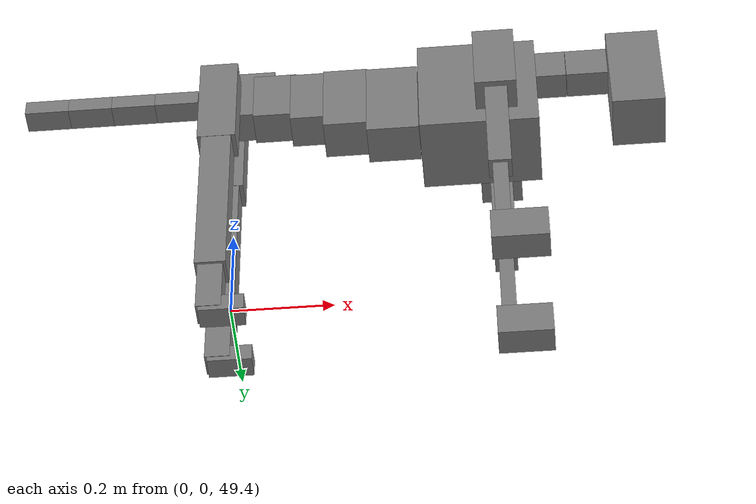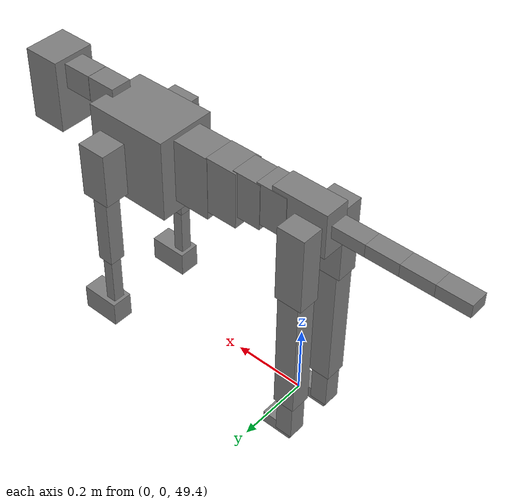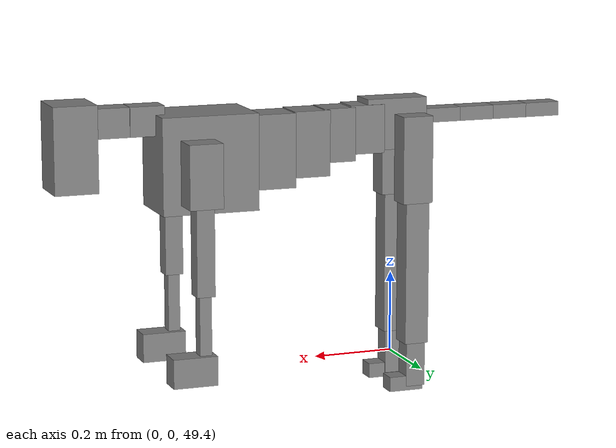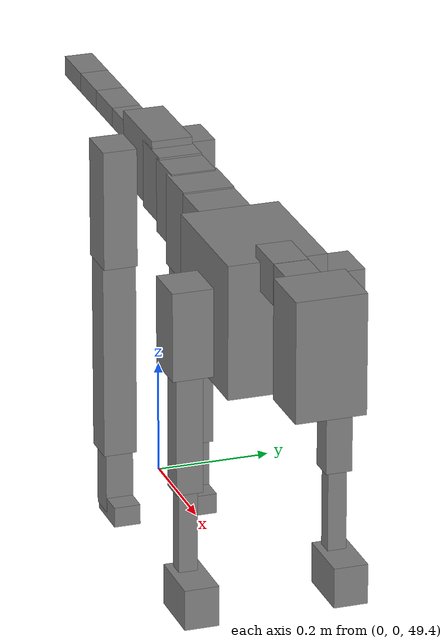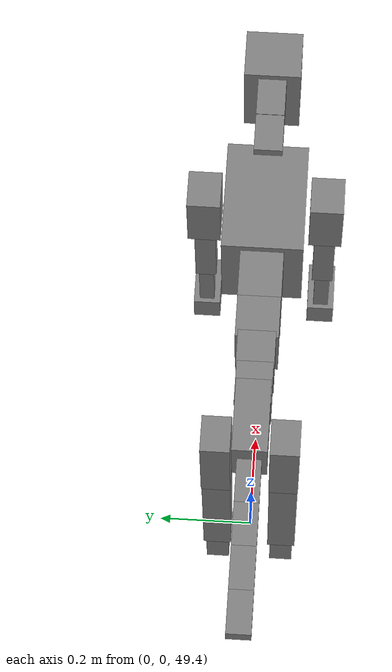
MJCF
<mujoco model="dog">

    <default>
        <joint armature="0.02" stiffness="1" damping="0.2" limited="true"/>
        <geom condim="3" friction="1 0.05 0.05" margin="0.01"/>
        <motor ctrllimited="true" ctrlrange="-1.0 1.0" forcelimited="true" gear="50"/>
    </default>

    <compiler inertiafromgeom="true" angle="radian"/>

    <option timestep="0.016" iterations="50" tolerance="1e-10" solver="Newton" jacobian="dense" cone="pyramidal"/>

    <size nconmax="20000" njmax="60000" nstack="5000000"/>
    <visual>
        <map force="0.1" zfar="30"/>
        <rgba haze="0.15 0.25 0.35 1"/>
        <quality shadowsize="2048"/>
        <global offwidth="800" offheight="800"/>
    </visual>

    <asset>
        <texture type="skybox" builtin="gradient" rgb1="0.3 0.5 0.7" rgb2="0 0 0" width="512" height="512"/>
        <texture name="texplane" type="2d" builtin="checker" rgb1=".2 .3 .4" rgb2=".1 0.15 0.2" width="512" height="512"
                 mark="cross" markrgb=".8 .8 .8"/>
        <texture name="texgeom" type="cube" builtin="flat" mark="cross" width="127" height="1278" rgb1="0.8 0.6 0.4"
                 rgb2="0.8 0.6 0.4" markrgb="1 1 1" random="0.01"/>

        <material name="matplane" reflectance="0.3" texture="texplane" texrepeat="1 1" texuniform="true"/>
        <material name="matgeom" texture="texgeom" texuniform="true" rgba="0.8 0.6 .4 1"/>
    </asset>

    <worldbody>
        <geom name="floor" pos="0 0 0" size="0 0 .25" type="plane" material="matplane" condim="3"/>

        <light directional="false" diffuse=".2 .2 .2" specular="0 0 0" pos="0 0 5" dir="0 0 -1" castshadow="false"/>
        <light mode="targetbodycom" target="torso" directional="false" diffuse=".8 .8 .8" specular="0.3 0.3 0.3"
               pos="0 0 4.0" dir="0 0 -1"/>

        <body name="root" pos="0 0 50">
            <freejoint name="root_1"/>
            <geom type="box" pos="0 0 -0.02" size="0.0774  0.0358  0.063" density="2030"/>

            <body name="spine1" pos="0.054 0 0">
                <joint name="spine1_y" axis="0 1 0" range="0 0.7" limited="true"/>
                <geom type="box" pos="0.02375 0 -0.03" size="0.04375  0.0375  0.05985" density="2030"/>

                <body name="spine2" pos="0.0612 0 0">
                    <joint name="spine2_y" axis="0 1 0" range="-0.15 0.15" limited="true"/>
                    <geom type="box" pos="0.03555  0  -0.04" size="0.04055  0.039  0.06615" density="2030"/>

                    <body name="spine3" pos="0.0730 0 0">
                        <joint name="spine3_y" axis="0 1 0" range="-0.15 0.15" limited="true"/>
                        <geom type="box" pos="0.03555  0  -0.057" size="0.04555  0.0445  0.081" density="2030"/>

                        <body name="spine4" pos="0.0780 0 0">
                            <joint name="spine4_y" axis="0 1 0" range="-0.15 0.15" limited="true"/>
                            <geom type="box" pos="0.05265  0  -0.07" size="0.05265  0.045  0.09135" density="2030"/>

                            <body name="torso" pos="0.1082 0 0">
                                <joint name="torso_y" axis="0 1 0" range="-0.15 0.15" limited="true"/>
                                <geom type="box" pos="0.11925  0  -0.085" size="0.11925  0.085  0.11745"
                                      density="2030"/>

                                <body name="neck1" pos="0.2160  0   0.0180">
                                    <joint name="neck1_y" axis="0 1 0" range="-1.2  -1" limited="true"/>
                                    <geom type="box" pos="0.0423  0  0" size="0.0423  0.03  0.036" density="2325"/>

                                    <body name="neck2" pos="0.0853  0  0">
                                        <joint name="neck2_y" axis="0 1 0" range="0.1  0" limited="true"/>
                                        <geom type="box" pos="0.0423  0  0" size="0.0423  0.03  0.036" density="2325"/>

                                        <body name="head" pos="0.0853  0  0">
                                            <joint name="head_y" axis="0 1 0" range="-0.3  -0.2" limited="true"/>
                                            <geom type="box" pos="0.0531  0  -0.055" size="0.0531  0.06  0.1044"
                                                  density="4030"/>

                                        </body>
                                    </body>
                                </body>

                                <body name="front_shoulder" pos="0.156  0   -0.0480">
                                    <joint name="front_shoulder_y" axis="0 1 0" range="-1 1.5" limited="true"/>
                                    <geom type="box" pos="0 0.13 -0.0508" size="0.0412  0.0353  0.0774" density="1158"/>
                                    <geom type="box" pos="0 -0.13 -0.0508" size="0.0412  0.0353  0.0774"
                                          density="1158"/>

                                    <body name="front_elbow" pos="0  0  -0.1015">
                                        <joint name="front_elbow_y" axis="0 1 0" range="-2 0" limited="true"/>
                                        <geom type="box" pos="0 0.13 -0.1195" size="0.0224  0.0229  0.1195"
                                              density="1081"/>
                                        <geom type="box" pos="0 -0.13 -0.1195" size="0.0224  0.0229  0.1195"
                                              density="1081"/>

                                        <body name="front_wrist" pos="0  0  -0.2390">
                                            <joint name="front_wrist_y" axis="0 1 0" range="-0.2 0" limited="true"/>
                                            <geom type="box" pos="0 0.13 -0.0791" size="0.0148  0.0165  0.0922"
                                                  density="1664"/>
                                            <geom type="box" pos="0 -0.13 -0.0791" size="0.0148  0.0165  0.0922"
                                                  density="1664"/>

                                            <body name="front_finger_end" pos="0  0  -0.1582">
                                                <joint name="front_finger_y" axis="0 1 0" range="-0.4 1"
                                                       limited="true"/>
                                                <geom type="box" pos="0.0298  0.13  -0.0208"
                                                      size="0.0547  0.0298  0.0358" density="1515"/>
                                                <geom type="box" pos="0.0298  -0.13  -0.0208"
                                                      size="0.0547  0.0298  0.0358" density="1515"/>

                                            </body>

                                        </body>
                                    </body>
                                </body>

                            </body>
                        </body>
                    </body>
                </body>
            </body>

            <body name="back_hip" pos="-0.03 0 -0.018">
                <joint name="back_hip_y" axis="0 1 0" range="-1.5 0.3" limited="true"/>
                <geom type="box" pos="0 0.07 -0.0847" size="0.0384  0.0301  0.1075" density="1154"/>
                <geom type="box" pos="0 -0.07 -0.0847" size="0.0384  0.0301  0.1075" density="1154"/>

                <body name="back_knee" pos="0  0  -0.1694">
                    <joint name="back_knee_y" axis="0 1 0" range="0 2.8" limited="true"/>
                    <geom type="box" pos="0 0.07 -0.1797" size="0.0301  0.0297  0.1953" density="1227"/>
                    <geom type="box" pos="0 -0.07 -0.1797" size="0.0301  0.0297  0.1953" density="1227"/>

                    <body name="back_ankle" pos="0  0  -0.3594">
                        <joint name="back_ankle_y" axis="0 1 0" range="-2.2 0" limited="true"/>
                        <geom type="box" pos="0 0.07 -0.0569" size="0.0244  0.0244  0.0682" density="1284"/>
                        <geom type="box" pos="0 -0.07 -0.0569" size="0.0244  0.0244  0.0682" density="1284"/>

                        <body name="back_toe_end" pos="0  0  -0.1138">
                            <joint name="back_toe_y" axis="0 1 0" range="-0.4 1" limited="true"/>
                            <geom type="box" pos="0.0236  0.07  -0.0033" size="0.0433  0.0236  0.0183" density="1515"/>
                            <geom type="box" pos="0.0236  -0.07  -0.0033" size="0.0433  0.0236  0.0183" density="1515"/>

                        </body>
                    </body>
                </body>
            </body>

            <body name="tail1" pos="-0.074 0 -0.006">
                <joint name="tail1_y" axis="0 1 0" range="-0.2 0.2" limited="true"/>
                <geom type="box" pos="-0.0536  0  0" size="0.045  0.025  0.0175" density="1587"/>

                <body name="tail2" pos="-0.09 0 0">
                    <joint name="tail2_y" axis="0 1 0" range="-0.2 0.2" limited="true"/>
                    <geom type="box" pos="-0.0536  0  0" size="0.045  0.025  0.0175" density="1587"/>

                    <body name="tail3" pos="-0.09 0 0">
                        <joint name="tail3_y" axis="0 1 0" range="-0.2 0.2" limited="true"/>
                        <geom type="box" pos="-0.0536  0  0" size="0.045  0.025  0.0175" density="1587"/>

                        <body name="tail4" pos="-0.09 0 0">
                            <joint name="tail4_y" axis="0 1 0" range="-0.2 0.2" limited="true"/>
                            <geom type="box" pos="-0.0536  0  0" size="0.045  0.025  0.0175" density="1587"/>

                        </body>
                    </body>
                </body>
            </body>
        </body>
    </worldbody>

    <actuator>
        <motor joint="spine1_y" forcerange="-150 150     "/>
        <motor joint="spine2_y" forcerange="-150 150     "/>
        <motor joint="spine3_y" forcerange="-150 150     "/>
        <motor joint="spine4_y" forcerange="-150 150     "/>
        <motor joint="torso_y" forcerange="-150 150     "/>
        <motor joint="neck1_y" forcerange="-100 100       "/>
        <motor joint="neck2_y" forcerange="-100 100       "/>
        <motor joint="head_y" forcerange="-150 150       "/>
        <motor joint="front_shoulder_y" forcerange="-196.09 138.94"/>
        <motor joint="front_elbow_y" forcerange="-159.15 107.46"/>
        <motor joint="front_wrist_y" forcerange="-71.33 60.42"/>
        <motor joint="front_finger_y" forcerange="-48.40 70.63"/>
        <motor joint="back_hip_y" forcerange="-275.55 326.44"/>
        <motor joint="back_knee_y" forcerange="-344.11 288.15"/>
        <motor joint="back_angle_y" forcerange="-131.00 158.64"/>
        <motor joint="back_toe_y" forcerange="-77.98 30.97"/>
        <motor joint="tail1_y" forcerange="-50 50     "/>
        <motor joint="tail2_y" forcerange="-50 50     "/>
        <motor joint="tail3_y" forcerange="-50 50     "/>
        <motor joint="tail4_y" forcerange="-50 50     "/>
    </actuator>
</mujoco>
